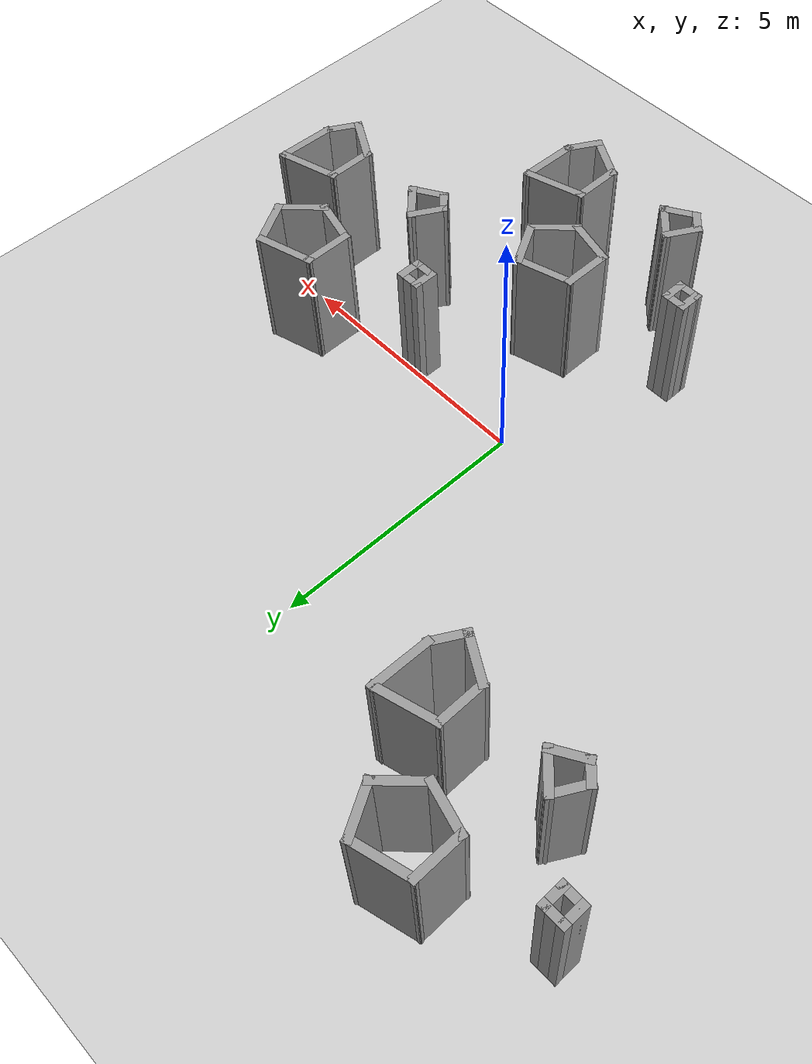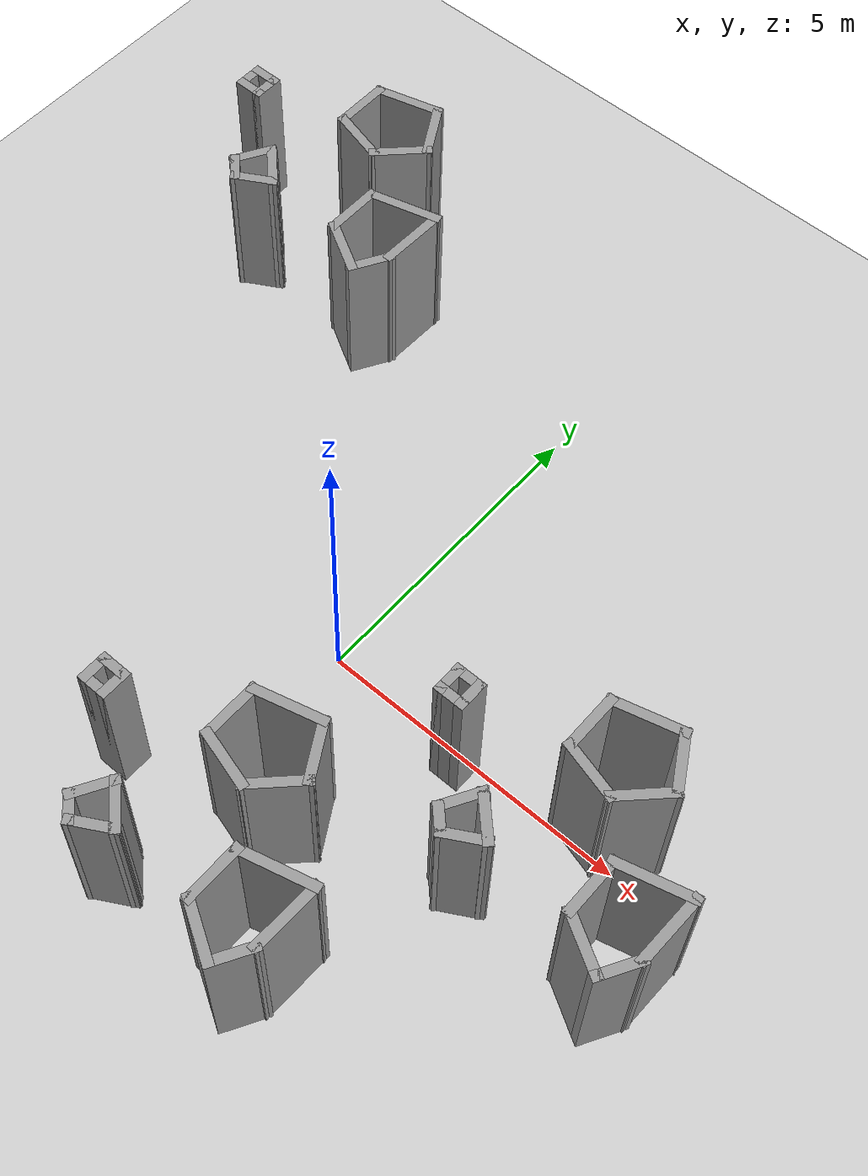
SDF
<sdf version="1.7">
 <world name="default">
  <light name="sun" type="directional">
   <pose>0 0 10 0 -0 0</pose>
   <diffuse>0.8 0.8 0.8 1</diffuse>
   <specular>0.2 0.2 0.2 1</specular>
   <attenuation>
    <range>1000</range>
    <constant>0.9</constant>
    <linear>0.01</linear>
    <quadratic>0.001</quadratic>
   </attenuation>
   <direction>-0.5 0.1 -0.9</direction>
   <spot><inner_angle>0</inner_angle><outer_angle>0</outer_angle><falloff>0</falloff></spot>
  </light>
  <model name="ground_plane">
   <static>1</static>
   <link name="link">
    <collision name="collision">
     <geometry><plane><normal>0 0 1</normal><size>100 100</size></plane></geometry>
     <surface><friction><ode><mu>100</mu><mu2>50</mu2></ode></friction></surface>
    </collision>
    <visual name="visual">
     <cast_shadows>0</cast_shadows>
     <geometry><plane><normal>0 0 1</normal><size>100 100</size></plane></geometry>
     <material>
      <script><uri>file://media/materials/scripts/gazebo.material</uri><name>Gazebo/Grey</name></script>
     </material>
    </visual>
   </link>
  </model>
  <gravity>0 0 -9.8</gravity>
  <magnetic_field>6e-06 2.3e-05 -4.2e-05</magnetic_field>
  <atmosphere type="adiabatic"/>
  <physics type="ode">
   <max_step_size>0.001</max_step_size>
   <real_time_factor>1</real_time_factor>
   <real_time_update_rate>1000</real_time_update_rate>
  </physics>
  <scene><ambient>0.4 0.4 0.4 1</ambient><background>0.7 0.7 0.7 1</background><shadows>1</shadows></scene>
  <spherical_coordinates>
   <surface_model>EARTH_WGS84</surface_model>
   <latitude_deg>0</latitude_deg>
   <longitude_deg>0</longitude_deg>
   <elevation>0</elevation>
   <heading_deg>0</heading_deg>
  </spherical_coordinates>
  <model name="test2">
   <pose>3.41539 0.855482 0 0 -0 0</pose>
   <link name="Wall_10">
    <collision name="Wall_10_Collision">
     <geometry><box><size>0.5 0.15 2.5</size></box></geometry>
     <pose>0 0 1.25 0 -0 0</pose>
    </collision>
    <visual name="Wall_10_Visual">
     <pose>0 0 1.25 0 -0 0</pose>
     <geometry><box><size>0.5 0.15 2.5</size></box></geometry>
     <material>
      <script><uri>file://media/materials/scripts/gazebo.material</uri><name>Gazebo/Grey</name></script>
      <ambient>1 1 1 1</ambient>
     </material>
     <meta><layer>0</layer></meta>
    </visual>
    <pose>-0.875928 -1.04392 0 0 -0 1.5708</pose>
   </link>
   <link name="Wall_11">
    <collision name="Wall_11_Collision">
     <geometry><box><size>0.5 0.15 2.5</size></box></geometry>
     <pose>0 0 1.25 0 -0 0</pose>
    </collision>
    <visual name="Wall_11_Visual">
     <pose>0 0 1.25 0 -0 0</pose>
     <geometry><box><size>0.5 0.15 2.5</size></box></geometry>
     <material>
      <script><uri>file://media/materials/scripts/gazebo.material</uri><name>Gazebo/Grey</name></script>
      <ambient>1 1 1 1</ambient>
     </material>
     <meta><layer>0</layer></meta>
    </visual>
    <pose>-1.05093 -0.868924 0 0 -0 3.14159</pose>
   </link>
   <link name="Wall_13">
    <collision name="Wall_13_Collision">
     <geometry><box><size>1 0.15 2.5</size></box></geometry>
     <pose>0 0 1.25 0 -0 0</pose>
    </collision>
    <visual name="Wall_13_Visual">
     <pose>0 0 1.25 0 -0 0</pose>
     <geometry><box><size>1 0.15 2.5</size></box></geometry>
     <material>
      <script><uri>file://media/materials/scripts/gazebo.material</uri><name>Gazebo/Grey</name></script>
      <ambient>1 1 1 1</ambient>
     </material>
     <meta><layer>0</layer></meta>
    </visual>
    <pose>0.534072 -0.323924 0 0 -0 -1.5708</pose>
   </link>
   <link name="Wall_14">
    <collision name="Wall_14_Collision">
     <geometry><box><size>1 0.15 2.5</size></box></geometry>
     <pose>0 0 1.25 0 -0 0</pose>
    </collision>
    <visual name="Wall_14_Visual">
     <pose>0 0 1.25 0 -0 0</pose>
     <geometry><box><size>1 0.15 2.5</size></box></geometry>
     <material>
      <script><uri>file://media/materials/scripts/gazebo.material</uri><name>Gazebo/Grey</name></script>
      <ambient>1 1 1 1</ambient>
     </material>
     <meta><layer>0</layer></meta>
    </visual>
    <pose>0.944591 -0.858922 0 0 -0 -0.261799</pose>
   </link>
   <link name="Wall_15">
    <collision name="Wall_15_Collision">
     <geometry><box><size>1 0.15 2.5</size></box></geometry>
     <pose>0 0 1.25 0 -0 0</pose>
    </collision>
    <visual name="Wall_15_Visual">
     <pose>0 0 1.25 0 -0 0</pose>
     <geometry><box><size>1 0.15 2.5</size></box></geometry>
     <material>
      <script><uri>file://media/materials/scripts/gazebo.material</uri><name>Gazebo/Grey</name></script>
      <ambient>1 1 1 1</ambient>
     </material>
     <meta><layer>0</layer></meta>
    </visual>
    <pose>1.65563 -0.668399 0 0 -0 0.785398</pose>
   </link>
   <link name="Wall_16">
    <collision name="Wall_16_Collision">
     <geometry><box><size>1 0.15 2.5</size></box></geometry>
     <pose>0 0 1.25 0 -0 0</pose>
    </collision>
    <visual name="Wall_16_Visual">
     <pose>0 0 1.25 0 -0 0</pose>
     <geometry><box><size>1 0.15 2.5</size></box></geometry>
     <material>
      <script><uri>file://media/materials/scripts/gazebo.material</uri><name>Gazebo/Grey</name></script>
      <ambient>1 1 1 1</ambient>
     </material>
     <meta><layer>0</layer></meta>
    </visual>
    <pose>1.74365 0.000182 0 0 -0 2.0944</pose>
   </link>
   <link name="Wall_17">
    <collision name="Wall_17_Collision">
     <geometry><box><size>1.18225 0.15 2.5</size></box></geometry>
     <pose>0 0 1.25 0 -0 0</pose>
    </collision>
    <visual name="Wall_17_Visual">
     <pose>0 0 1.25 0 -0 0</pose>
     <geometry><box><size>1.18225 0.15 2.5</size></box></geometry>
     <material>
      <script><uri>file://media/materials/scripts/gazebo.material</uri><name>Gazebo/Grey</name></script>
      <ambient>1 1 1 1</ambient>
     </material>
     <meta><layer>0</layer></meta>
    </visual>
    <pose>1.03261 0.234659 0 0 -0 -2.87979</pose>
   </link>
   <link name="Wall_19">
    <collision name="Wall_19_Collision">
     <geometry><box><size>0.75 0.15 2.5</size></box></geometry>
     <pose>0 0 1.25 0 -0 0</pose>
    </collision>
    <visual name="Wall_19_Visual">
     <pose>0 0 1.25 0 -0 0</pose>
     <geometry><box><size>0.75 0.15 2.5</size></box></geometry>
     <material>
      <script><uri>file://media/materials/scripts/gazebo.material</uri><name>Gazebo/Grey</name></script>
      <ambient>1 1 1 1</ambient>
     </material>
     <meta><layer>0</layer></meta>
    </visual>
    <pose>-0.025928 -2.23873 0 0 -0 -2.0944</pose>
   </link>
   <link name="Wall_20">
    <collision name="Wall_20_Collision">
     <geometry><box><size>0.5 0.15 2.5</size></box></geometry>
     <pose>0 0 1.25 0 -0 0</pose>
    </collision>
    <visual name="Wall_20_Visual">
     <pose>0 0 1.25 0 -0 0</pose>
     <geometry><box><size>0.5 0.15 2.5</size></box></geometry>
     <material>
      <script><uri>file://media/materials/scripts/gazebo.material</uri><name>Gazebo/Grey</name></script>
      <ambient>1 1 1 1</ambient>
     </material>
     <meta><layer>0</layer></meta>
    </visual>
    <pose>-0.052184 -2.62228 0 0 -0 -0.785398</pose>
   </link>
   <link name="Wall_21">
    <collision name="Wall_21_Collision">
     <geometry><box><size>0.75 0.15 2.5</size></box></geometry>
     <pose>0 0 1.25 0 -0 0</pose>
    </collision>
    <visual name="Wall_21_Visual">
     <pose>0 0 1.25 0 -0 0</pose>
     <geometry><box><size>0.75 0.15 2.5</size></box></geometry>
     <material>
      <script><uri>file://media/materials/scripts/gazebo.material</uri><name>Gazebo/Grey</name></script>
      <ambient>1 1 1 1</ambient>
     </material>
     <meta><layer>0</layer></meta>
    </visual>
    <pose>0.331367 -2.59603 0 0 -0 0.523599</pose>
   </link>
   <link name="Wall_22">
    <collision name="Wall_22_Collision">
     <geometry><box><size>0.810583 0.15 2.5</size></box></geometry>
     <pose>0 0 1.25 0 -0 0</pose>
    </collision>
    <visual name="Wall_22_Visual">
     <pose>0 0 1.25 0 -0 0</pose>
     <geometry><box><size>0.810583 0.15 2.5</size></box></geometry>
     <material>
      <script><uri>file://media/materials/scripts/gazebo.material</uri><name>Gazebo/Grey</name></script>
      <ambient>1 1 1 1</ambient>
     </material>
     <meta><layer>0</layer></meta>
    </visual>
    <pose>0.357623 -2.21247 0 0 -0 2.35619</pose>
   </link>
   <link name="Wall_24">
    <collision name="Wall_24_Collision">
     <geometry><box><size>1.25 0.15 2.5</size></box></geometry>
     <pose>0 0 1.25 0 -0 0</pose>
    </collision>
    <visual name="Wall_24_Visual">
     <pose>0 0 1.25 0 -0 0</pose>
     <geometry><box><size>1.25 0.15 2.5</size></box></geometry>
     <material>
      <script><uri>file://media/materials/scripts/gazebo.material</uri><name>Gazebo/Grey</name></script>
      <ambient>1 1 1 1</ambient>
     </material>
     <meta><layer>0</layer></meta>
    </visual>
    <pose>2.44281 -1.49127 0 0 -0 -2.87979</pose>
   </link>
   <link name="Wall_25">
    <collision name="Wall_25_Collision">
     <geometry><box><size>1 0.15 2.5</size></box></geometry>
     <pose>0 0 1.25 0 -0 0</pose>
    </collision>
    <visual name="Wall_25_Visual">
     <pose>0 0 1.25 0 -0 0</pose>
     <geometry><box><size>1 0.15 2.5</size></box></geometry>
     <material>
      <script><uri>file://media/materials/scripts/gazebo.material</uri><name>Gazebo/Grey</name></script>
      <ambient>1 1 1 1</ambient>
     </material>
     <meta><layer>0</layer></meta>
    </visual>
    <pose>1.91155 -2.05862 0 0 -0 -1.5708</pose>
   </link>
   <link name="Wall_26">
    <collision name="Wall_26_Collision">
     <geometry><box><size>1 0.15 2.5</size></box></geometry>
     <pose>0 0 1.25 0 -0 0</pose>
    </collision>
    <visual name="Wall_26_Visual">
     <pose>0 0 1.25 0 -0 0</pose>
     <geometry><box><size>1 0.15 2.5</size></box></geometry>
     <material>
      <script><uri>file://media/materials/scripts/gazebo.material</uri><name>Gazebo/Grey</name></script>
      <ambient>1 1 1 1</ambient>
     </material>
     <meta><layer>0</layer></meta>
    </visual>
    <pose>2.27961 -2.69612 0 0 -0 -0.523599</pose>
   </link>
   <link name="Wall_27">
    <collision name="Wall_27_Collision">
     <geometry><box><size>0.75 0.15 2.5</size></box></geometry>
     <pose>0 0 1.25 0 -0 0</pose>
    </collision>
    <visual name="Wall_27_Visual">
     <pose>0 0 1.25 0 -0 0</pose>
     <geometry><box><size>0.75 0.15 2.5</size></box></geometry>
     <material>
      <script><uri>file://media/materials/scripts/gazebo.material</uri><name>Gazebo/Grey</name></script>
      <ambient>1 1 1 1</ambient>
     </material>
     <meta><layer>0</layer></meta>
    </visual>
    <pose>2.79767 -2.64882 0 0 -0 1.0472</pose>
   </link>
   <link name="Wall_28">
    <collision name="Wall_28_Collision">
     <geometry><box><size>1.19042 0.15 2.5</size></box></geometry>
     <pose>0 0 1.25 0 -0 0</pose>
    </collision>
    <visual name="Wall_28_Visual">
     <pose>0 0 1.25 0 -0 0</pose>
     <geometry><box><size>1.19042 0.15 2.5</size></box></geometry>
     <material>
      <script><uri>file://media/materials/scripts/gazebo.material</uri><name>Gazebo/Grey</name></script>
      <ambient>1 1 1 1</ambient>
     </material>
     <meta><layer>0</layer></meta>
    </visual>
    <pose>2.96087 -1.86897 0 0 -0 1.54542</pose>
   </link>
   <link name="Wall_8">
    <collision name="Wall_8_Collision">
     <geometry><box><size>0.5 0.15 2.5</size></box></geometry>
     <pose>0 0 1.25 0 -0 0</pose>
    </collision>
    <visual name="Wall_8_Visual">
     <pose>0 0 1.25 0 -0 0</pose>
     <geometry><box><size>0.5 0.15 2.5</size></box></geometry>
     <material>
      <script><uri>file://media/materials/scripts/gazebo.material</uri><name>Gazebo/Grey</name></script>
      <ambient>1 1 1 1</ambient>
     </material>
     <meta><layer>0</layer></meta>
    </visual>
    <pose>-1.22593 -1.04392 0 0 -0 -1.5708</pose>
   </link>
   <link name="Wall_9">
    <collision name="Wall_9_Collision">
     <geometry><box><size>0.5 0.15 2.5</size></box></geometry>
     <pose>0 0 1.25 0 -0 0</pose>
    </collision>
    <visual name="Wall_9_Visual">
     <pose>0 0 1.25 0 -0 0</pose>
     <geometry><box><size>0.5 0.15 2.5</size></box></geometry>
     <material>
      <script><uri>file://media/materials/scripts/gazebo.material</uri><name>Gazebo/Grey</name></script>
      <ambient>1 1 1 1</ambient>
     </material>
     <meta><layer>0</layer></meta>
    </visual>
    <pose>-1.05093 -1.21892 0 0 -0 0</pose>
   </link>
   <static>1</static>
  </model>
  <model name="test2_0">
   <pose>-0.16104 -2.0863 0 0 -0 0</pose>
   <link name="Wall_10">
    <collision name="Wall_10_Collision">
     <geometry><box><size>0.5 0.15 2.5</size></box></geometry>
     <pose>0 0 1.25 0 -0 0</pose>
    </collision>
    <visual name="Wall_10_Visual">
     <pose>0 0 1.25 0 -0 0</pose>
     <geometry><box><size>0.5 0.15 2.5</size></box></geometry>
     <material>
      <script><uri>file://media/materials/scripts/gazebo.material</uri><name>Gazebo/Grey</name></script>
      <ambient>1 1 1 1</ambient>
     </material>
     <meta><layer>0</layer></meta>
    </visual>
    <pose>-0.875928 -1.04392 0 0 -0 1.5708</pose>
   </link>
   <link name="Wall_11">
    <collision name="Wall_11_Collision">
     <geometry><box><size>0.5 0.15 2.5</size></box></geometry>
     <pose>0 0 1.25 0 -0 0</pose>
    </collision>
    <visual name="Wall_11_Visual">
     <pose>0 0 1.25 0 -0 0</pose>
     <geometry><box><size>0.5 0.15 2.5</size></box></geometry>
     <material>
      <script><uri>file://media/materials/scripts/gazebo.material</uri><name>Gazebo/Grey</name></script>
      <ambient>1 1 1 1</ambient>
     </material>
     <meta><layer>0</layer></meta>
    </visual>
    <pose>-1.05093 -0.868924 0 0 -0 3.14159</pose>
   </link>
   <link name="Wall_13">
    <collision name="Wall_13_Collision">
     <geometry><box><size>1 0.15 2.5</size></box></geometry>
     <pose>0 0 1.25 0 -0 0</pose>
    </collision>
    <visual name="Wall_13_Visual">
     <pose>0 0 1.25 0 -0 0</pose>
     <geometry><box><size>1 0.15 2.5</size></box></geometry>
     <material>
      <script><uri>file://media/materials/scripts/gazebo.material</uri><name>Gazebo/Grey</name></script>
      <ambient>1 1 1 1</ambient>
     </material>
     <meta><layer>0</layer></meta>
    </visual>
    <pose>0.534072 -0.323924 0 0 -0 -1.5708</pose>
   </link>
   <link name="Wall_14">
    <collision name="Wall_14_Collision">
     <geometry><box><size>1 0.15 2.5</size></box></geometry>
     <pose>0 0 1.25 0 -0 0</pose>
    </collision>
    <visual name="Wall_14_Visual">
     <pose>0 0 1.25 0 -0 0</pose>
     <geometry><box><size>1 0.15 2.5</size></box></geometry>
     <material>
      <script><uri>file://media/materials/scripts/gazebo.material</uri><name>Gazebo/Grey</name></script>
      <ambient>1 1 1 1</ambient>
     </material>
     <meta><layer>0</layer></meta>
    </visual>
    <pose>0.944591 -0.858922 0 0 -0 -0.261799</pose>
   </link>
   <link name="Wall_15">
    <collision name="Wall_15_Collision">
     <geometry><box><size>1 0.15 2.5</size></box></geometry>
     <pose>0 0 1.25 0 -0 0</pose>
    </collision>
    <visual name="Wall_15_Visual">
     <pose>0 0 1.25 0 -0 0</pose>
     <geometry><box><size>1 0.15 2.5</size></box></geometry>
     <material>
      <script><uri>file://media/materials/scripts/gazebo.material</uri><name>Gazebo/Grey</name></script>
      <ambient>1 1 1 1</ambient>
     </material>
     <meta><layer>0</layer></meta>
    </visual>
    <pose>1.65563 -0.668399 0 0 -0 0.785398</pose>
   </link>
   <link name="Wall_16">
    <collision name="Wall_16_Collision">
     <geometry><box><size>1 0.15 2.5</size></box></geometry>
     <pose>0 0 1.25 0 -0 0</pose>
    </collision>
    <visual name="Wall_16_Visual">
     <pose>0 0 1.25 0 -0 0</pose>
     <geometry><box><size>1 0.15 2.5</size></box></geometry>
     <material>
      <script><uri>file://media/materials/scripts/gazebo.material</uri><name>Gazebo/Grey</name></script>
      <ambient>1 1 1 1</ambient>
     </material>
     <meta><layer>0</layer></meta>
    </visual>
    <pose>1.74365 0.000182 0 0 -0 2.0944</pose>
   </link>
   <link name="Wall_17">
    <collision name="Wall_17_Collision">
     <geometry><box><size>1.18225 0.15 2.5</size></box></geometry>
     <pose>0 0 1.25 0 -0 0</pose>
    </collision>
    <visual name="Wall_17_Visual">
     <pose>0 0 1.25 0 -0 0</pose>
     <geometry><box><size>1.18225 0.15 2.5</size></box></geometry>
     <material>
      <script><uri>file://media/materials/scripts/gazebo.material</uri><name>Gazebo/Grey</name></script>
      <ambient>1 1 1 1</ambient>
     </material>
     <meta><layer>0</layer></meta>
    </visual>
    <pose>1.03261 0.234659 0 0 -0 -2.87979</pose>
   </link>
   <link name="Wall_19">
    <collision name="Wall_19_Collision">
     <geometry><box><size>0.75 0.15 2.5</size></box></geometry>
     <pose>0 0 1.25 0 -0 0</pose>
    </collision>
    <visual name="Wall_19_Visual">
     <pose>0 0 1.25 0 -0 0</pose>
     <geometry><box><size>0.75 0.15 2.5</size></box></geometry>
     <material>
      <script><uri>file://media/materials/scripts/gazebo.material</uri><name>Gazebo/Grey</name></script>
      <ambient>1 1 1 1</ambient>
     </material>
     <meta><layer>0</layer></meta>
    </visual>
    <pose>-0.025928 -2.23873 0 0 -0 -2.0944</pose>
   </link>
   <link name="Wall_20">
    <collision name="Wall_20_Collision">
     <geometry><box><size>0.5 0.15 2.5</size></box></geometry>
     <pose>0 0 1.25 0 -0 0</pose>
    </collision>
    <visual name="Wall_20_Visual">
     <pose>0 0 1.25 0 -0 0</pose>
     <geometry><box><size>0.5 0.15 2.5</size></box></geometry>
     <material>
      <script><uri>file://media/materials/scripts/gazebo.material</uri><name>Gazebo/Grey</name></script>
      <ambient>1 1 1 1</ambient>
     </material>
     <meta><layer>0</layer></meta>
    </visual>
    <pose>-0.052184 -2.62228 0 0 -0 -0.785398</pose>
   </link>
   <link name="Wall_21">
    <collision name="Wall_21_Collision">
     <geometry><box><size>0.75 0.15 2.5</size></box></geometry>
     <pose>0 0 1.25 0 -0 0</pose>
    </collision>
    <visual name="Wall_21_Visual">
     <pose>0 0 1.25 0 -0 0</pose>
     <geometry><box><size>0.75 0.15 2.5</size></box></geometry>
     <material>
      <script><uri>file://media/materials/scripts/gazebo.material</uri><name>Gazebo/Grey</name></script>
      <ambient>1 1 1 1</ambient>
     </material>
     <meta><layer>0</layer></meta>
    </visual>
    <pose>0.331367 -2.59603 0 0 -0 0.523599</pose>
   </link>
   <link name="Wall_22">
    <collision name="Wall_22_Collision">
     <geometry><box><size>0.810583 0.15 2.5</size></box></geometry>
     <pose>0 0 1.25 0 -0 0</pose>
    </collision>
    <visual name="Wall_22_Visual">
     <pose>0 0 1.25 0 -0 0</pose>
     <geometry><box><size>0.810583 0.15 2.5</size></box></geometry>
     <material>
      <script><uri>file://media/materials/scripts/gazebo.material</uri><name>Gazebo/Grey</name></script>
      <ambient>1 1 1 1</ambient>
     </material>
     <meta><layer>0</layer></meta>
    </visual>
    <pose>0.357623 -2.21247 0 0 -0 2.35619</pose>
   </link>
   <link name="Wall_24">
    <collision name="Wall_24_Collision">
     <geometry><box><size>1.25 0.15 2.5</size></box></geometry>
     <pose>0 0 1.25 0 -0 0</pose>
    </collision>
    <visual name="Wall_24_Visual">
     <pose>0 0 1.25 0 -0 0</pose>
     <geometry><box><size>1.25 0.15 2.5</size></box></geometry>
     <material>
      <script><uri>file://media/materials/scripts/gazebo.material</uri><name>Gazebo/Grey</name></script>
      <ambient>1 1 1 1</ambient>
     </material>
     <meta><layer>0</layer></meta>
    </visual>
    <pose>2.44281 -1.49127 0 0 -0 -2.87979</pose>
   </link>
   <link name="Wall_25">
    <collision name="Wall_25_Collision">
     <geometry><box><size>1 0.15 2.5</size></box></geometry>
     <pose>0 0 1.25 0 -0 0</pose>
    </collision>
    <visual name="Wall_25_Visual">
     <pose>0 0 1.25 0 -0 0</pose>
     <geometry><box><size>1 0.15 2.5</size></box></geometry>
     <material>
      <script><uri>file://media/materials/scripts/gazebo.material</uri><name>Gazebo/Grey</name></script>
      <ambient>1 1 1 1</ambient>
     </material>
     <meta><layer>0</layer></meta>
    </visual>
    <pose>1.91155 -2.05862 0 0 -0 -1.5708</pose>
   </link>
   <link name="Wall_26">
    <collision name="Wall_26_Collision">
     <geometry><box><size>1 0.15 2.5</size></box></geometry>
     <pose>0 0 1.25 0 -0 0</pose>
    </collision>
    <visual name="Wall_26_Visual">
     <pose>0 0 1.25 0 -0 0</pose>
     <geometry><box><size>1 0.15 2.5</size></box></geometry>
     <material>
      <script><uri>file://media/materials/scripts/gazebo.material</uri><name>Gazebo/Grey</name></script>
      <ambient>1 1 1 1</ambient>
     </material>
     <meta><layer>0</layer></meta>
    </visual>
    <pose>2.27961 -2.69612 0 0 -0 -0.523599</pose>
   </link>
   <link name="Wall_27">
    <collision name="Wall_27_Collision">
     <geometry><box><size>0.75 0.15 2.5</size></box></geometry>
     <pose>0 0 1.25 0 -0 0</pose>
    </collision>
    <visual name="Wall_27_Visual">
     <pose>0 0 1.25 0 -0 0</pose>
     <geometry><box><size>0.75 0.15 2.5</size></box></geometry>
     <material>
      <script><uri>file://media/materials/scripts/gazebo.material</uri><name>Gazebo/Grey</name></script>
      <ambient>1 1 1 1</ambient>
     </material>
     <meta><layer>0</layer></meta>
    </visual>
    <pose>2.79767 -2.64882 0 0 -0 1.0472</pose>
   </link>
   <link name="Wall_28">
    <collision name="Wall_28_Collision">
     <geometry><box><size>1.19042 0.15 2.5</size></box></geometry>
     <pose>0 0 1.25 0 -0 0</pose>
    </collision>
    <visual name="Wall_28_Visual">
     <pose>0 0 1.25 0 -0 0</pose>
     <geometry><box><size>1.19042 0.15 2.5</size></box></geometry>
     <material>
      <script><uri>file://media/materials/scripts/gazebo.material</uri><name>Gazebo/Grey</name></script>
      <ambient>1 1 1 1</ambient>
     </material>
     <meta><layer>0</layer></meta>
    </visual>
    <pose>2.96087 -1.86897 0 0 -0 1.54542</pose>
   </link>
   <link name="Wall_8">
    <collision name="Wall_8_Collision">
     <geometry><box><size>0.5 0.15 2.5</size></box></geometry>
     <pose>0 0 1.25 0 -0 0</pose>
    </collision>
    <visual name="Wall_8_Visual">
     <pose>0 0 1.25 0 -0 0</pose>
     <geometry><box><size>0.5 0.15 2.5</size></box></geometry>
     <material>
      <script><uri>file://media/materials/scripts/gazebo.material</uri><name>Gazebo/Grey</name></script>
      <ambient>1 1 1 1</ambient>
     </material>
     <meta><layer>0</layer></meta>
    </visual>
    <pose>-1.22593 -1.04392 0 0 -0 -1.5708</pose>
   </link>
   <link name="Wall_9">
    <collision name="Wall_9_Collision">
     <geometry><box><size>0.5 0.15 2.5</size></box></geometry>
     <pose>0 0 1.25 0 -0 0</pose>
    </collision>
    <visual name="Wall_9_Visual">
     <pose>0 0 1.25 0 -0 0</pose>
     <geometry><box><size>0.5 0.15 2.5</size></box></geometry>
     <material>
      <script><uri>file://media/materials/scripts/gazebo.material</uri><name>Gazebo/Grey</name></script>
      <ambient>1 1 1 1</ambient>
     </material>
     <meta><layer>0</layer></meta>
    </visual>
    <pose>-1.05093 -1.21892 0 0 -0 0</pose>
   </link>
   <static>1</static>
  </model>
  <model name="test2_1">
   <pose>-6.06153 7.0262 0 0 -0 0</pose>
   <link name="Wall_10">
    <collision name="Wall_10_Collision">
     <geometry><box><size>0.5 0.15 2.5</size></box></geometry>
     <pose>0 0 1.25 0 -0 0</pose>
    </collision>
    <visual name="Wall_10_Visual">
     <pose>0 0 1.25 0 -0 0</pose>
     <geometry><box><size>0.5 0.15 2.5</size></box></geometry>
     <material>
      <script><uri>file://media/materials/scripts/gazebo.material</uri><name>Gazebo/Grey</name></script>
      <ambient>1 1 1 1</ambient>
     </material>
     <meta><layer>0</layer></meta>
    </visual>
    <pose>-0.875928 -1.04392 0 0 -0 1.5708</pose>
   </link>
   <link name="Wall_11">
    <collision name="Wall_11_Collision">
     <geometry><box><size>0.5 0.15 2.5</size></box></geometry>
     <pose>0 0 1.25 0 -0 0</pose>
    </collision>
    <visual name="Wall_11_Visual">
     <pose>0 0 1.25 0 -0 0</pose>
     <geometry><box><size>0.5 0.15 2.5</size></box></geometry>
     <material>
      <script><uri>file://media/materials/scripts/gazebo.material</uri><name>Gazebo/Grey</name></script>
      <ambient>1 1 1 1</ambient>
     </material>
     <meta><layer>0</layer></meta>
    </visual>
    <pose>-1.05093 -0.868924 0 0 -0 3.14159</pose>
   </link>
   <link name="Wall_13">
    <collision name="Wall_13_Collision">
     <geometry><box><size>1 0.15 2.5</size></box></geometry>
     <pose>0 0 1.25 0 -0 0</pose>
    </collision>
    <visual name="Wall_13_Visual">
     <pose>0 0 1.25 0 -0 0</pose>
     <geometry><box><size>1 0.15 2.5</size></box></geometry>
     <material>
      <script><uri>file://media/materials/scripts/gazebo.material</uri><name>Gazebo/Grey</name></script>
      <ambient>1 1 1 1</ambient>
     </material>
     <meta><layer>0</layer></meta>
    </visual>
    <pose>0.534072 -0.323924 0 0 -0 -1.5708</pose>
   </link>
   <link name="Wall_14">
    <collision name="Wall_14_Collision">
     <geometry><box><size>1 0.15 2.5</size></box></geometry>
     <pose>0 0 1.25 0 -0 0</pose>
    </collision>
    <visual name="Wall_14_Visual">
     <pose>0 0 1.25 0 -0 0</pose>
     <geometry><box><size>1 0.15 2.5</size></box></geometry>
     <material>
      <script><uri>file://media/materials/scripts/gazebo.material</uri><name>Gazebo/Grey</name></script>
      <ambient>1 1 1 1</ambient>
     </material>
     <meta><layer>0</layer></meta>
    </visual>
    <pose>0.944591 -0.858922 0 0 -0 -0.261799</pose>
   </link>
   <link name="Wall_15">
    <collision name="Wall_15_Collision">
     <geometry><box><size>1 0.15 2.5</size></box></geometry>
     <pose>0 0 1.25 0 -0 0</pose>
    </collision>
    <visual name="Wall_15_Visual">
     <pose>0 0 1.25 0 -0 0</pose>
     <geometry><box><size>1 0.15 2.5</size></box></geometry>
     <material>
      <script><uri>file://media/materials/scripts/gazebo.material</uri><name>Gazebo/Grey</name></script>
      <ambient>1 1 1 1</ambient>
     </material>
     <meta><layer>0</layer></meta>
    </visual>
    <pose>1.65563 -0.668399 0 0 -0 0.785398</pose>
   </link>
   <link name="Wall_16">
    <collision name="Wall_16_Collision">
     <geometry><box><size>1 0.15 2.5</size></box></geometry>
     <pose>0 0 1.25 0 -0 0</pose>
    </collision>
    <visual name="Wall_16_Visual">
     <pose>0 0 1.25 0 -0 0</pose>
     <geometry><box><size>1 0.15 2.5</size></box></geometry>
     <material>
      <script><uri>file://media/materials/scripts/gazebo.material</uri><name>Gazebo/Grey</name></script>
      <ambient>1 1 1 1</ambient>
     </material>
     <meta><layer>0</layer></meta>
    </visual>
    <pose>1.74365 0.000182 0 0 -0 2.0944</pose>
   </link>
   <link name="Wall_17">
    <collision name="Wall_17_Collision">
     <geometry><box><size>1.18225 0.15 2.5</size></box></geometry>
     <pose>0 0 1.25 0 -0 0</pose>
    </collision>
    <visual name="Wall_17_Visual">
     <pose>0 0 1.25 0 -0 0</pose>
     <geometry><box><size>1.18225 0.15 2.5</size></box></geometry>
     <material>
      <script><uri>file://media/materials/scripts/gazebo.material</uri><name>Gazebo/Grey</name></script>
      <ambient>1 1 1 1</ambient>
     </material>
     <meta><layer>0</layer></meta>
    </visual>
    <pose>1.03261 0.234659 0 0 -0 -2.87979</pose>
   </link>
   <link name="Wall_19">
    <collision name="Wall_19_Collision">
     <geometry><box><size>0.75 0.15 2.5</size></box></geometry>
     <pose>0 0 1.25 0 -0 0</pose>
    </collision>
    <visual name="Wall_19_Visual">
     <pose>0 0 1.25 0 -0 0</pose>
     <geometry><box><size>0.75 0.15 2.5</size></box></geometry>
     <material>
      <script><uri>file://media/materials/scripts/gazebo.material</uri><name>Gazebo/Grey</name></script>
      <ambient>1 1 1 1</ambient>
     </material>
     <meta><layer>0</layer></meta>
    </visual>
    <pose>-0.025928 -2.23873 0 0 -0 -2.0944</pose>
   </link>
   <link name="Wall_20">
    <collision name="Wall_20_Collision">
     <geometry><box><size>0.5 0.15 2.5</size></box></geometry>
     <pose>0 0 1.25 0 -0 0</pose>
    </collision>
    <visual name="Wall_20_Visual">
     <pose>0 0 1.25 0 -0 0</pose>
     <geometry><box><size>0.5 0.15 2.5</size></box></geometry>
     <material>
      <script><uri>file://media/materials/scripts/gazebo.material</uri><name>Gazebo/Grey</name></script>
      <ambient>1 1 1 1</ambient>
     </material>
     <meta><layer>0</layer></meta>
    </visual>
    <pose>-0.052184 -2.62228 0 0 -0 -0.785398</pose>
   </link>
   <link name="Wall_21">
    <collision name="Wall_21_Collision">
     <geometry><box><size>0.75 0.15 2.5</size></box></geometry>
     <pose>0 0 1.25 0 -0 0</pose>
    </collision>
    <visual name="Wall_21_Visual">
     <pose>0 0 1.25 0 -0 0</pose>
     <geometry><box><size>0.75 0.15 2.5</size></box></geometry>
     <material>
      <script><uri>file://media/materials/scripts/gazebo.material</uri><name>Gazebo/Grey</name></script>
      <ambient>1 1 1 1</ambient>
     </material>
     <meta><layer>0</layer></meta>
    </visual>
    <pose>0.331367 -2.59603 0 0 -0 0.523599</pose>
   </link>
   <link name="Wall_22">
    <collision name="Wall_22_Collision">
     <geometry><box><size>0.810583 0.15 2.5</size></box></geometry>
     <pose>0 0 1.25 0 -0 0</pose>
    </collision>
    <visual name="Wall_22_Visual">
     <pose>0 0 1.25 0 -0 0</pose>
     <geometry><box><size>0.810583 0.15 2.5</size></box></geometry>
     <material>
      <script><uri>file://media/materials/scripts/gazebo.material</uri><name>Gazebo/Grey</name></script>
      <ambient>1 1 1 1</ambient>
     </material>
     <meta><layer>0</layer></meta>
    </visual>
    <pose>0.357623 -2.21247 0 0 -0 2.35619</pose>
   </link>
   <link name="Wall_24">
    <collision name="Wall_24_Collision">
     <geometry><box><size>1.25 0.15 2.5</size></box></geometry>
     <pose>0 0 1.25 0 -0 0</pose>
    </collision>
    <visual name="Wall_24_Visual">
     <pose>0 0 1.25 0 -0 0</pose>
     <geometry><box><size>1.25 0.15 2.5</size></box></geometry>
     <material>
      <script><uri>file://media/materials/scripts/gazebo.material</uri><name>Gazebo/Grey</name></script>
      <ambient>1 1 1 1</ambient>
     </material>
     <meta><layer>0</layer></meta>
    </visual>
    <pose>2.44281 -1.49127 0 0 -0 -2.87979</pose>
   </link>
   <link name="Wall_25">
    <collision name="Wall_25_Collision">
     <geometry><box><size>1 0.15 2.5</size></box></geometry>
     <pose>0 0 1.25 0 -0 0</pose>
    </collision>
    <visual name="Wall_25_Visual">
     <pose>0 0 1.25 0 -0 0</pose>
     <geometry><box><size>1 0.15 2.5</size></box></geometry>
     <material>
      <script><uri>file://media/materials/scripts/gazebo.material</uri><name>Gazebo/Grey</name></script>
      <ambient>1 1 1 1</ambient>
     </material>
     <meta><layer>0</layer></meta>
    </visual>
    <pose>1.91155 -2.05862 0 0 -0 -1.5708</pose>
   </link>
   <link name="Wall_26">
    <collision name="Wall_26_Collision">
     <geometry><box><size>1 0.15 2.5</size></box></geometry>
     <pose>0 0 1.25 0 -0 0</pose>
    </collision>
    <visual name="Wall_26_Visual">
     <pose>0 0 1.25 0 -0 0</pose>
     <geometry><box><size>1 0.15 2.5</size></box></geometry>
     <material>
      <script><uri>file://media/materials/scripts/gazebo.material</uri><name>Gazebo/Grey</name></script>
      <ambient>1 1 1 1</ambient>
     </material>
     <meta><layer>0</layer></meta>
    </visual>
    <pose>2.27961 -2.69612 0 0 -0 -0.523599</pose>
   </link>
   <link name="Wall_27">
    <collision name="Wall_27_Collision">
     <geometry><box><size>0.75 0.15 2.5</size></box></geometry>
     <pose>0 0 1.25 0 -0 0</pose>
    </collision>
    <visual name="Wall_27_Visual">
     <pose>0 0 1.25 0 -0 0</pose>
     <geometry><box><size>0.75 0.15 2.5</size></box></geometry>
     <material>
      <script><uri>file://media/materials/scripts/gazebo.material</uri><name>Gazebo/Grey</name></script>
      <ambient>1 1 1 1</ambient>
     </material>
     <meta><layer>0</layer></meta>
    </visual>
    <pose>2.79767 -2.64882 0 0 -0 1.0472</pose>
   </link>
   <link name="Wall_28">
    <collision name="Wall_28_Collision">
     <geometry><box><size>1.19042 0.15 2.5</size></box></geometry>
     <pose>0 0 1.25 0 -0 0</pose>
    </collision>
    <visual name="Wall_28_Visual">
     <pose>0 0 1.25 0 -0 0</pose>
     <geometry><box><size>1.19042 0.15 2.5</size></box></geometry>
     <material>
      <script><uri>file://media/materials/scripts/gazebo.material</uri><name>Gazebo/Grey</name></script>
      <ambient>1 1 1 1</ambient>
     </material>
     <meta><layer>0</layer></meta>
    </visual>
    <pose>2.96087 -1.86897 0 0 -0 1.54542</pose>
   </link>
   <link name="Wall_8">
    <collision name="Wall_8_Collision">
     <geometry><box><size>0.5 0.15 2.5</size></box></geometry>
     <pose>0 0 1.25 0 -0 0</pose>
    </collision>
    <visual name="Wall_8_Visual">
     <pose>0 0 1.25 0 -0 0</pose>
     <geometry><box><size>0.5 0.15 2.5</size></box></geometry>
     <material>
      <script><uri>file://media/materials/scripts/gazebo.material</uri><name>Gazebo/Grey</name></script>
      <ambient>1 1 1 1</ambient>
     </material>
     <meta><layer>0</layer></meta>
    </visual>
    <pose>-1.22593 -1.04392 0 0 -0 -1.5708</pose>
   </link>
   <link name="Wall_9">
    <collision name="Wall_9_Collision">
     <geometry><box><size>0.5 0.15 2.5</size></box></geometry>
     <pose>0 0 1.25 0 -0 0</pose>
    </collision>
    <visual name="Wall_9_Visual">
     <pose>0 0 1.25 0 -0 0</pose>
     <geometry><box><size>0.5 0.15 2.5</size></box></geometry>
     <material>
      <script><uri>file://media/materials/scripts/gazebo.material</uri><name>Gazebo/Grey</name></script>
      <ambient>1 1 1 1</ambient>
     </material>
     <meta><layer>0</layer></meta>
    </visual>
    <pose>-1.05093 -1.21892 0 0 -0 0</pose>
   </link>
   <static>1</static>
  </model>
 </world>
</sdf>
